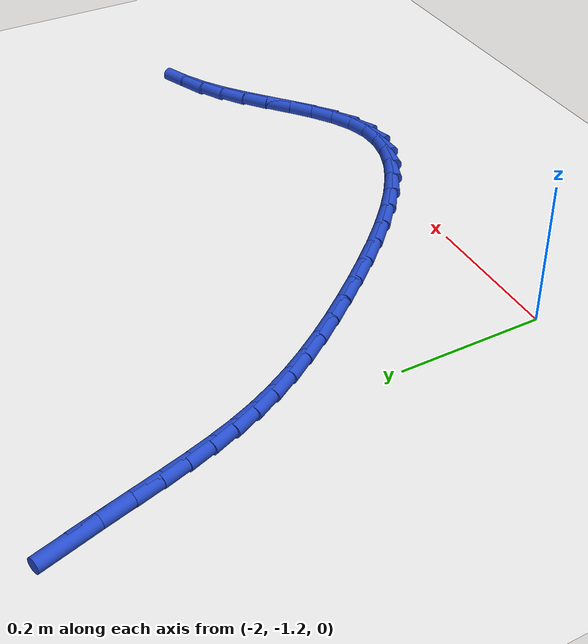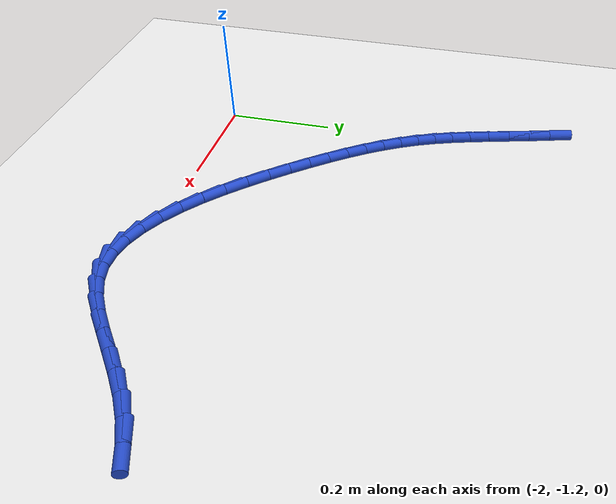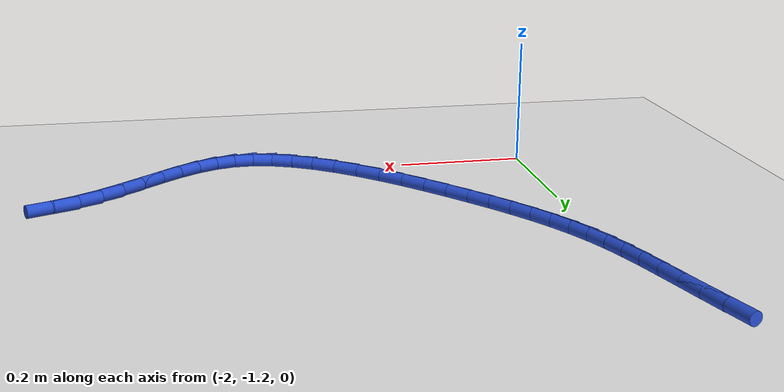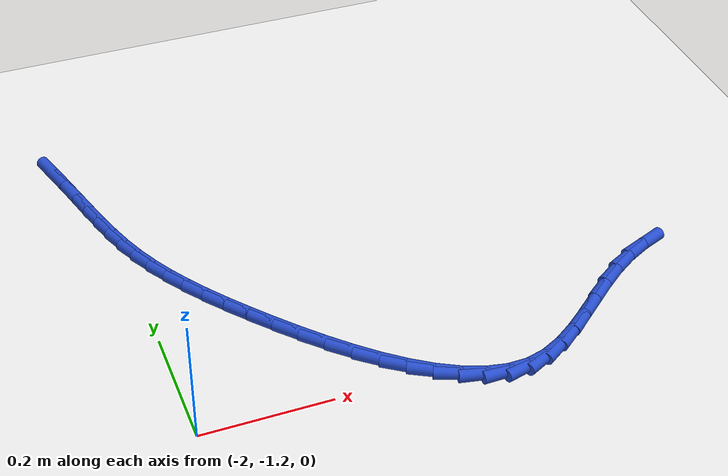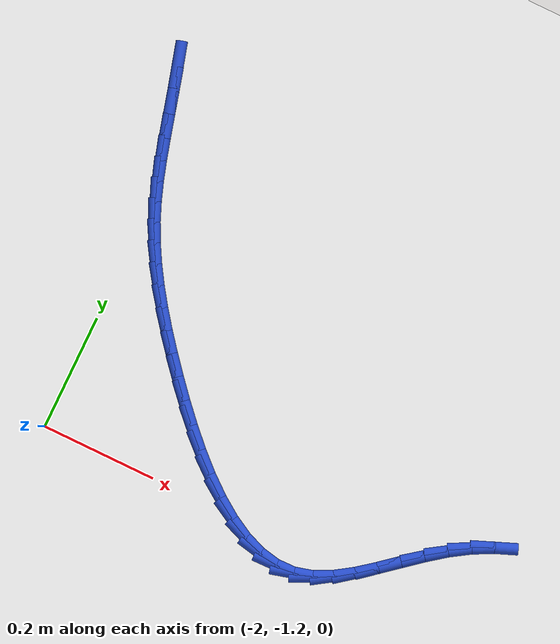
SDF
<sdf version="1.6">
 <world name="default">
  <model name="ground_plane">
   <static>1</static>
   <link name="link">
    <collision name="collision">
     <geometry><plane><normal>0 0 1</normal><size>100 100</size></plane></geometry>
     <surface><friction><ode><mu>100</mu><mu2>50</mu2></ode></friction></surface>
    </collision>
    <visual name="visual">
     <cast_shadows>0</cast_shadows>
     <geometry><plane><normal>0 0 1</normal><size>100 100</size></plane></geometry>
     <material>
      <script><uri>file://media/materials/scripts/gazebo.material</uri><name>Gazebo/WhiteGlow</name></script>
     </material>
    </visual>
   </link>
  </model>
  <model name="line">
   <link name="link_118">
    <pose>-2.060332312134096 -0.5618549262225755 0.01 0 1.57 -1.293382688878935</pose>
    <collision name="collision">
     <geometry><cylinder><radius>0.01</radius><length>0.08</length></cylinder></geometry>
    </collision>
    <visual name="visual">
     <material>
      <script><name>Gazebo/Blue</name><uri>file://media/materials/scripts/gazebo.material</uri></script>
     </material>
     <geometry><cylinder><radius>0.01</radius><length>0.08</length></cylinder></geometry>
    </visual>
   </link>
   <link name="link_119">
    <pose>-2.0484116001520745 -0.6037178000603545 0.01 0 1.57 -1.3050261008933317</pose>
    <collision name="collision">
     <geometry><cylinder><radius>0.01</radius><length>0.08</length></cylinder></geometry>
    </collision>
    <visual name="visual">
     <material>
      <script><name>Gazebo/Blue</name><uri>file://media/materials/scripts/gazebo.material</uri></script>
     </material>
     <geometry><cylinder><radius>0.01</radius><length>0.08</length></cylinder></geometry>
    </visual>
   </link>
   <link name="link_120">
    <pose>-2.037690630840945 -0.6431027673265324 0.01 0 1.57 -1.3063974176832231</pose>
    <collision name="collision">
     <geometry><cylinder><radius>0.01</radius><length>0.08</length></cylinder></geometry>
    </collision>
    <visual name="visual">
     <material>
      <script><name>Gazebo/Blue</name><uri>file://media/materials/scripts/gazebo.material</uri></script>
     </material>
     <geometry><cylinder><radius>0.01</radius><length>0.08</length></cylinder></geometry>
    </visual>
   </link>
   <link name="link_121">
    <pose>-2.027613174560889 -0.68032503521024 0.01 0 1.57 -1.2954345021038127</pose>
    <collision name="collision">
     <geometry><cylinder><radius>0.01</radius><length>0.08</length></cylinder></geometry>
    </collision>
    <visual name="visual">
     <material>
      <script><name>Gazebo/Blue</name><uri>file://media/materials/scripts/gazebo.material</uri></script>
     </material>
     <geometry><cylinder><radius>0.01</radius><length>0.08</length></cylinder></geometry>
    </visual>
   </link>
   <link name="link_122">
    <pose>-2.0176170183600117 -0.7157047390732031 0.01 0 1.57 -1.2706942588044625</pose>
    <collision name="collision">
     <geometry><cylinder><radius>0.01</radius><length>0.08</length></cylinder></geometry>
    </collision>
    <visual name="visual">
     <material>
      <script><name>Gazebo/Blue</name><uri>file://media/materials/scripts/gazebo.material</uri></script>
     </material>
     <geometry><cylinder><radius>0.01</radius><length>0.08</length></cylinder></geometry>
    </visual>
   </link>
   <link name="link_123">
    <pose>-2.0071399492864157 -0.749562014277146 0.01 0 1.57 -1.2316424025399422</pose>
    <collision name="collision">
     <geometry><cylinder><radius>0.01</radius><length>0.08</length></cylinder></geometry>
    </collision>
    <visual name="visual">
     <material>
      <script><name>Gazebo/Blue</name><uri>file://media/materials/scripts/gazebo.material</uri></script>
     </material>
     <geometry><cylinder><radius>0.01</radius><length>0.08</length></cylinder></geometry>
    </visual>
   </link>
   <link name="link_124">
    <pose>-1.9956197543882053 -0.7822169961837941 0.01 0 1.57 -1.1790432622625637</pose>
    <collision name="collision">
     <geometry><cylinder><radius>0.01</radius><length>0.08</length></cylinder></geometry>
    </collision>
    <visual name="visual">
     <material>
      <script><name>Gazebo/Blue</name><uri>file://media/materials/scripts/gazebo.material</uri></script>
     </material>
     <geometry><cylinder><radius>0.01</radius><length>0.08</length></cylinder></geometry>
    </visual>
   </link>
   <link name="link_125">
    <pose>-1.9824942207134857 -0.8139898201548731 0.01 0 1.57 -1.1176728468232866</pose>
    <collision name="collision">
     <geometry><cylinder><radius>0.01</radius><length>0.08</length></cylinder></geometry>
    </collision>
    <visual name="visual">
     <material>
      <script><name>Gazebo/Blue</name><uri>file://media/materials/scripts/gazebo.material</uri></script>
     </material>
     <geometry><cylinder><radius>0.01</radius><length>0.08</length></cylinder></geometry>
    </visual>
   </link>
   <link name="link_126">
    <pose>-1.9673078032241575 -0.8451789867155206 0.01 0 1.57 -1.0599376970587293</pose>
    <collision name="collision">
     <geometry><cylinder><radius>0.01</radius><length>0.08</length></cylinder></geometry>
    </collision>
    <visual name="visual">
     <material>
      <script><name>Gazebo/Blue</name><uri>file://media/materials/scripts/gazebo.material</uri></script>
     </material>
     <geometry><cylinder><radius>0.01</radius><length>0.08</length></cylinder></geometry>
    </visual>
   </link>
   <link name="link_127">
    <pose>-1.9500354617529867 -0.8759956795755426 0.01 0 1.57 -1.0091780114156697</pose>
    <collision name="collision">
     <geometry><cylinder><radius>0.01</radius><length>0.08</length></cylinder></geometry>
    </collision>
    <visual name="visual">
     <material>
      <script><name>Gazebo/Blue</name><uri>file://media/materials/scripts/gazebo.material</uri></script>
     </material>
     <geometry><cylinder><radius>0.01</radius><length>0.08</length></cylinder></geometry>
    </visual>
   </link>
   <link name="link_128">
    <pose>-1.9307607492480536 -0.9066290571306587 0.01 0 1.57 -0.9656541544773847</pose>
    <collision name="collision">
     <geometry><cylinder><radius>0.01</radius><length>0.08</length></cylinder></geometry>
    </collision>
    <visual name="visual">
     <material>
      <script><name>Gazebo/Blue</name><uri>file://media/materials/scripts/gazebo.material</uri></script>
     </material>
     <geometry><cylinder><radius>0.01</radius><length>0.08</length></cylinder></geometry>
    </visual>
   </link>
   <link name="link_129">
    <pose>-1.9095672186602908 -0.9372682777760102 0.01 0 1.57 -0.9293089192465123</pose>
    <collision name="collision">
     <geometry><cylinder><radius>0.01</radius><length>0.08</length></cylinder></geometry>
    </collision>
    <visual name="visual">
     <material>
      <script><name>Gazebo/Blue</name><uri>file://media/materials/scripts/gazebo.material</uri></script>
     </material>
     <geometry><cylinder><radius>0.01</radius><length>0.08</length></cylinder></geometry>
    </visual>
   </link>
   <link name="link_130">
    <pose>-1.886538422940629 -0.9681024999067379 0.01 0 1.57 -0.8998599724028115</pose>
    <collision name="collision">
     <geometry><cylinder><radius>0.01</radius><length>0.08</length></cylinder></geometry>
    </collision>
    <visual name="visual">
     <material>
      <script><name>Gazebo/Blue</name><uri>file://media/materials/scripts/gazebo.material</uri></script>
     </material>
     <geometry><cylinder><radius>0.01</radius><length>0.08</length></cylinder></geometry>
    </visual>
   </link>
   <link name="link_131">
    <pose>-1.8617579150400012 -0.9993208819179836 0.01 0 1.57 -0.8768609260370717</pose>
    <collision name="collision">
     <geometry><cylinder><radius>0.01</radius><length>0.08</length></cylinder></geometry>
    </collision>
    <visual name="visual">
     <material>
      <script><name>Gazebo/Blue</name><uri>file://media/materials/scripts/gazebo.material</uri></script>
     </material>
     <geometry><cylinder><radius>0.01</radius><length>0.08</length></cylinder></geometry>
    </visual>
   </link>
   <link name="link_132">
    <pose>-1.835309484121929 -1.0311108618993503 0.01 0 1.57 -0.855945423599159</pose>
    <collision name="collision">
     <geometry><cylinder><radius>0.01</radius><length>0.08</length></cylinder></geometry>
    </collision>
    <visual name="visual">
     <material>
      <script><name>Gazebo/Blue</name><uri>file://media/materials/scripts/gazebo.material</uri></script>
     </material>
     <geometry><cylinder><radius>0.01</radius><length>0.08</length></cylinder></geometry>
    </visual>
   </link>
   <link name="link_133">
    <pose>-1.8073182497026599 -1.063358874362462 0.01 0 1.57 -0.8282817060563982</pose>
    <collision name="collision">
     <geometry><cylinder><radius>0.01</radius><length>0.08</length></cylinder></geometry>
    </collision>
    <visual name="visual">
     <material>
      <script><name>Gazebo/Blue</name><uri>file://media/materials/scripts/gazebo.material</uri></script>
     </material>
     <geometry><cylinder><radius>0.01</radius><length>0.08</length></cylinder></geometry>
    </visual>
   </link>
   <link name="link_134">
    <pose>-1.7779975800598566 -1.0953086495789075 0.01 0 1.57 -0.7917213569577052</pose>
    <collision name="collision">
     <geometry><cylinder><radius>0.01</radius><length>0.08</length></cylinder></geometry>
    </collision>
    <visual name="visual">
     <material>
      <script><name>Gazebo/Blue</name><uri>file://media/materials/scripts/gazebo.material</uri></script>
     </material>
     <geometry><cylinder><radius>0.01</radius><length>0.08</length></cylinder></geometry>
    </visual>
   </link>
   <link name="link_135">
    <pose>-1.7475721928658803 -1.1261212616563088 0.01 0 1.57 -0.7443705569233865</pose>
    <collision name="collision">
     <geometry><cylinder><radius>0.01</radius><length>0.08</length></cylinder></geometry>
    </collision>
    <visual name="visual">
     <material>
      <script><name>Gazebo/Blue</name><uri>file://media/materials/scripts/gazebo.material</uri></script>
     </material>
     <geometry><cylinder><radius>0.01</radius><length>0.08</length></cylinder></geometry>
    </visual>
   </link>
   <link name="link_136">
    <pose>-1.7162668057930908 -1.1549577847022878 0.01 0 1.57 -0.6833233561688374</pose>
    <collision name="collision">
     <geometry><cylinder><radius>0.01</radius><length>0.08</length></cylinder></geometry>
    </collision>
    <visual name="visual">
     <material>
      <script><name>Gazebo/Blue</name><uri>file://media/materials/scripts/gazebo.material</uri></script>
     </material>
     <geometry><cylinder><radius>0.01</radius><length>0.08</length></cylinder></geometry>
    </visual>
   </link>
   <link name="link_137">
    <pose>-1.684306136513849 -1.1809792928244687 0.01 0 1.57 -0.6043513217411646</pose>
    <collision name="collision">
     <geometry><cylinder><radius>0.01</radius><length>0.08</length></cylinder></geometry>
    </collision>
    <visual name="visual">
     <material>
      <script><name>Gazebo/Blue</name><uri>file://media/materials/scripts/gazebo.material</uri></script>
     </material>
     <geometry><cylinder><radius>0.01</radius><length>0.08</length></cylinder></geometry>
    </visual>
   </link>
   <link name="link_138">
    <pose>-1.6519149027005147 -1.2033468601304715 0.01 0 1.57 -0.5015776896897324</pose>
    <collision name="collision">
     <geometry><cylinder><radius>0.01</radius><length>0.08</length></cylinder></geometry>
    </collision>
    <visual name="visual">
     <material>
      <script><name>Gazebo/Blue</name><uri>file://media/materials/scripts/gazebo.material</uri></script>
     </material>
     <geometry><cylinder><radius>0.01</radius><length>0.08</length></cylinder></geometry>
    </visual>
   </link>
   <link name="link_139">
    <pose>-1.6193178220254494 -1.2212215607279207 0.01 0 1.57 -0.3675167871346827</pose>
    <collision name="collision">
     <geometry><cylinder><radius>0.01</radius><length>0.08</length></cylinder></geometry>
    </collision>
    <visual name="visual">
     <material>
      <script><name>Gazebo/Blue</name><uri>file://media/materials/scripts/gazebo.material</uri></script>
     </material>
     <geometry><cylinder><radius>0.01</radius><length>0.08</length></cylinder></geometry>
    </visual>
   </link>
   <link name="link_140">
    <pose>-1.5867396121610127 -1.233764468724438 0.01 0 1.57 -0.19457684001032965</pose>
    <collision name="collision">
     <geometry><cylinder><radius>0.01</radius><length>0.08</length></cylinder></geometry>
    </collision>
    <visual name="visual">
     <material>
      <script><name>Gazebo/Blue</name><uri>file://media/materials/scripts/gazebo.material</uri></script>
     </material>
     <geometry><cylinder><radius>0.01</radius><length>0.08</length></cylinder></geometry>
    </visual>
   </link>
   <link name="link_141">
    <pose>-1.5544049907795658 -1.2401366582276452 0.01 0 1.57 0.020001367277138707</pose>
    <collision name="collision">
     <geometry><cylinder><radius>0.01</radius><length>0.08</length></cylinder></geometry>
    </collision>
    <visual name="visual">
     <material>
      <script><name>Gazebo/Blue</name><uri>file://media/materials/scripts/gazebo.material</uri></script>
     </material>
     <geometry><cylinder><radius>0.01</radius><length>0.08</length></cylinder></geometry>
    </visual>
   </link>
   <link name="link_142">
    <pose>-1.5225386755534678 -1.239499203345166 0.01 0 1.57 0.2596052485259857</pose>
    <collision name="collision">
     <geometry><cylinder><radius>0.01</radius><length>0.08</length></cylinder></geometry>
    </collision>
    <visual name="visual">
     <material>
      <script><name>Gazebo/Blue</name><uri>file://media/materials/scripts/gazebo.material</uri></script>
     </material>
     <geometry><cylinder><radius>0.01</radius><length>0.08</length></cylinder></geometry>
    </visual>
   </link>
   <link name="link_143">
    <pose>-1.4913276174668915 -1.231209580679073 0.01 0 1.57 0.45589048234199414</pose>
    <collision name="collision">
     <geometry><cylinder><radius>0.01</radius><length>0.08</length></cylinder></geometry>
    </collision>
    <visual name="visual">
     <material>
      <script><name>Gazebo/Blue</name><uri>file://media/materials/scripts/gazebo.material</uri></script>
     </material>
     <geometry><cylinder><radius>0.01</radius><length>0.08</length></cylinder></geometry>
    </visual>
   </link>
   <link name="link_144">
    <pose>-1.460661227862808 -1.2161725967810153 0.01 0 1.57 0.5856708021701796</pose>
    <collision name="collision">
     <geometry><cylinder><radius>0.01</radius><length>0.08</length></cylinder></geometry>
    </collision>
    <visual name="visual">
     <material>
      <script><name>Gazebo/Blue</name><uri>file://media/materials/scripts/gazebo.material</uri></script>
     </material>
     <geometry><cylinder><radius>0.01</radius><length>0.08</length></cylinder></geometry>
    </visual>
   </link>
   <link name="link_145">
    <pose>-1.4302879947914167 -1.1960259179675319 0.01 0 1.57 0.6615036831508295</pose>
    <collision name="collision">
     <geometry><cylinder><radius>0.01</radius><length>0.08</length></cylinder></geometry>
    </collision>
    <visual name="visual">
     <material>
      <script><name>Gazebo/Blue</name><uri>file://media/materials/scripts/gazebo.material</uri></script>
     </material>
     <geometry><cylinder><radius>0.01</radius><length>0.08</length></cylinder></geometry>
    </visual>
   </link>
   <link name="link_146">
    <pose>-1.399955562356318 -1.1724115994286834 0.01 0 1.57 0.6944789218942741</pose>
    <collision name="collision">
     <geometry><cylinder><radius>0.01</radius><length>0.08</length></cylinder></geometry>
    </collision>
    <visual name="visual">
     <material>
      <script><name>Gazebo/Blue</name><uri>file://media/materials/scripts/gazebo.material</uri></script>
     </material>
     <geometry><cylinder><radius>0.01</radius><length>0.08</length></cylinder></geometry>
    </visual>
   </link>
   <link name="link_147">
    <pose>-1.3694115746611093 -1.146971696354529 0.01 0 1.57 0.690603843079649</pose>
    <collision name="collision">
     <geometry><cylinder><radius>0.01</radius><length>0.08</length></cylinder></geometry>
    </collision>
    <visual name="visual">
     <material>
      <script><name>Gazebo/Blue</name><uri>file://media/materials/scripts/gazebo.material</uri></script>
     </material>
     <geometry><cylinder><radius>0.01</radius><length>0.08</length></cylinder></geometry>
    </visual>
   </link>
   <link name="link_148">
    <pose>-1.3384036758093902 -1.1213482639351284 0.01 0 1.57 0.6509593097731788</pose>
    <collision name="collision">
     <geometry><cylinder><radius>0.01</radius><length>0.08</length></cylinder></geometry>
    </collision>
    <visual name="visual">
     <material>
      <script><name>Gazebo/Blue</name><uri>file://media/materials/scripts/gazebo.material</uri></script>
     </material>
     <geometry><cylinder><radius>0.01</radius><length>0.08</length></cylinder></geometry>
    </visual>
   </link>
   <link name="link_149">
    <pose>-1.306679509904759 -1.0971833573605418 0.01 0 1.57 0.5731005429154031</pose>
    <collision name="collision">
     <geometry><cylinder><radius>0.01</radius><length>0.08</length></cylinder></geometry>
    </collision>
    <visual name="visual">
     <material>
      <script><name>Gazebo/Blue</name><uri>file://media/materials/scripts/gazebo.material</uri></script>
     </material>
     <geometry><cylinder><radius>0.01</radius><length>0.08</length></cylinder></geometry>
    </visual>
   </link>
   <link name="link_150">
    <pose>-1.2739920430144143 -1.0760884467144696 0.01 0 1.57 0.4744972915675839</pose>
    <collision name="collision">
     <geometry><cylinder><radius>0.01</radius><length>0.08</length></cylinder></geometry>
    </collision>
    <visual name="visual">
     <material>
      <script><name>Gazebo/Blue</name><uri>file://media/materials/scripts/gazebo.material</uri></script>
     </material>
     <geometry><cylinder><radius>0.01</radius><length>0.08</length></cylinder></geometry>
    </visual>
   </link>
   <link name="link_151">
    <pose>-1.2402536042444579 -1.058759149237239 0.01 0 1.57 0.38156506786146244</pose>
    <collision name="collision">
     <geometry><cylinder><radius>0.01</radius><length>0.08</length></cylinder></geometry>
    </collision>
    <visual name="visual">
     <material>
      <script><name>Gazebo/Blue</name><uri>file://media/materials/scripts/gazebo.material</uri></script>
     </material>
     <geometry><cylinder><radius>0.01</radius><length>0.08</length></cylinder></geometry>
    </visual>
   </link>
  </model>
 </world>
</sdf>
